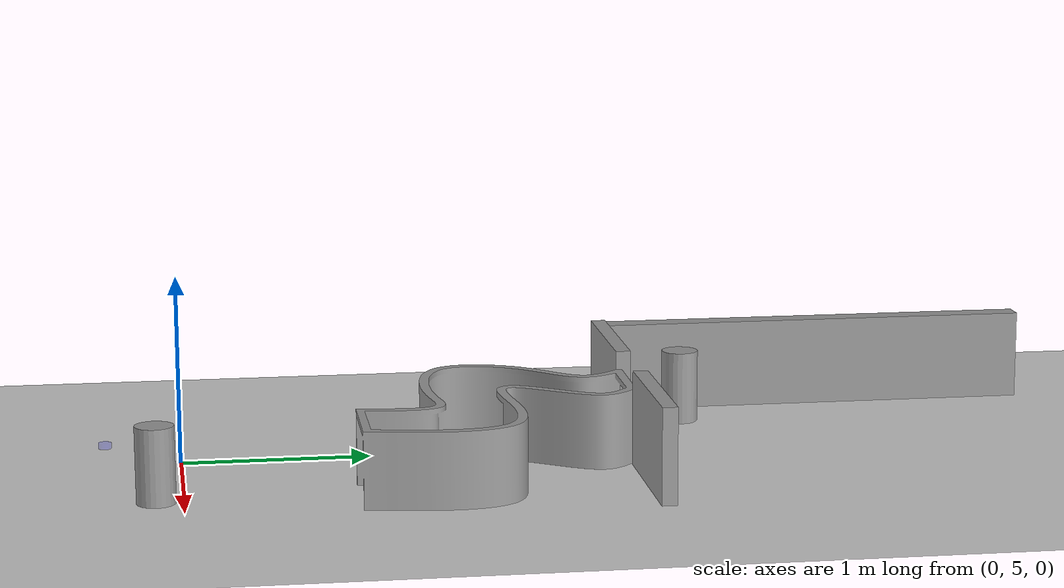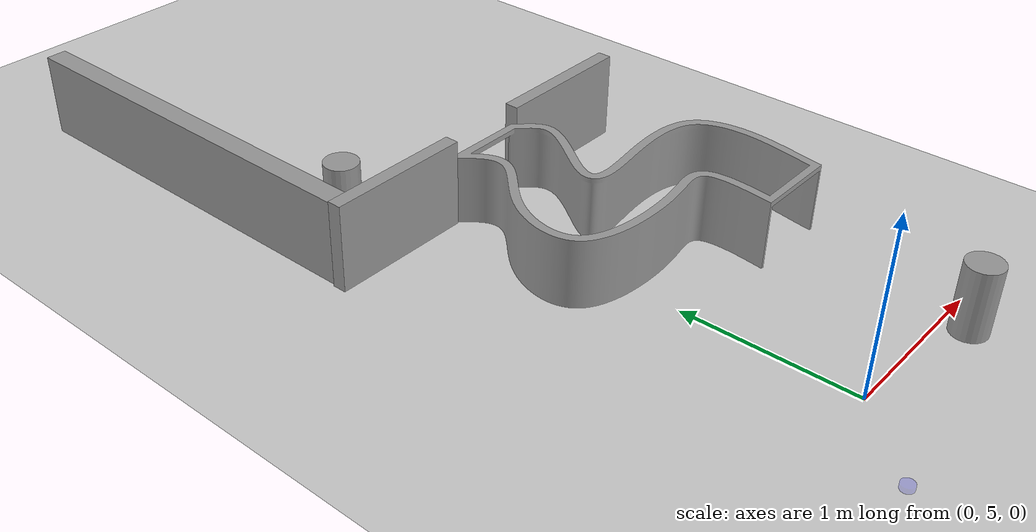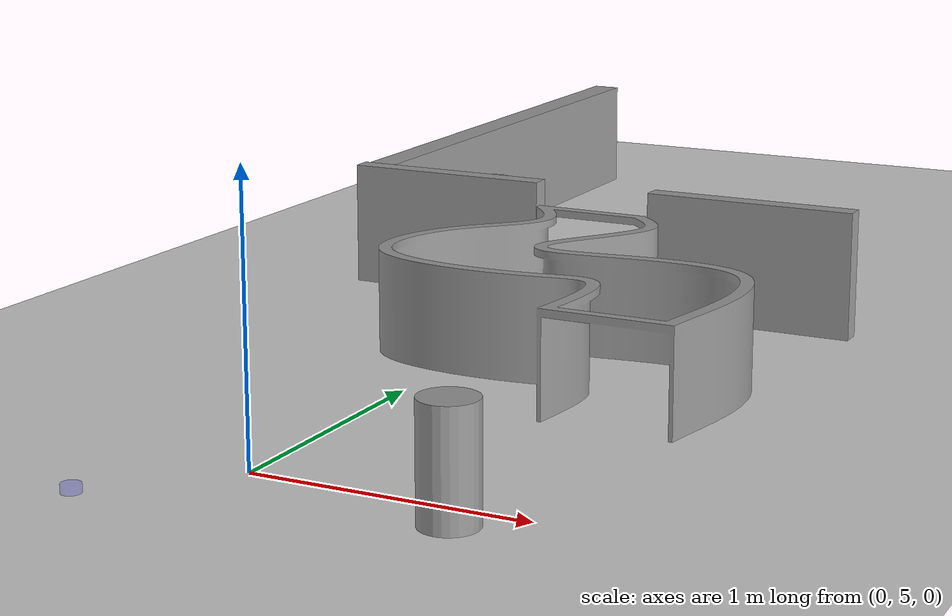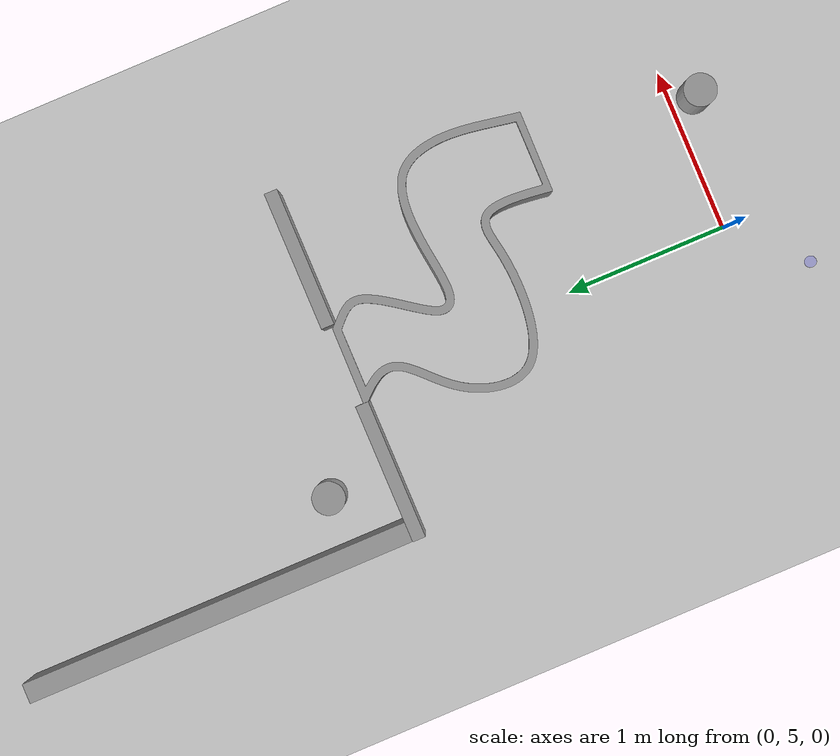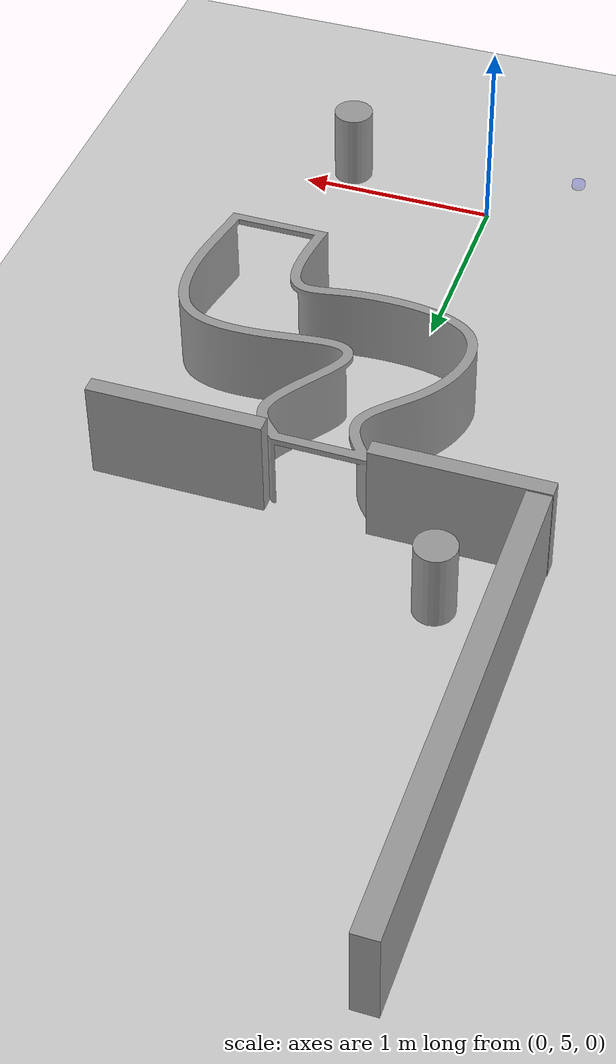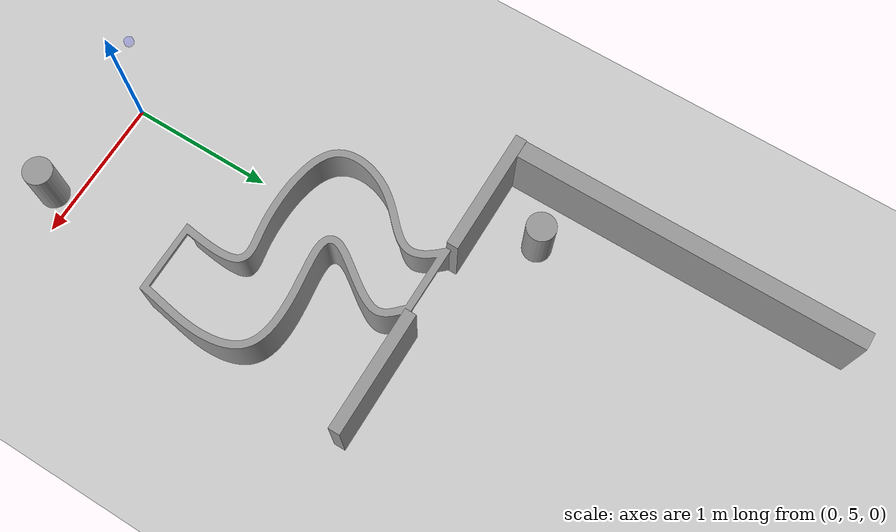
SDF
<sdf version="1.7">
 <world name="default">
  <model name="ground_plane">
   <static>1</static>
   <link name="link">
    <collision name="collision">
     <geometry><plane><normal>0 0 1</normal><size>100 100</size></plane></geometry>
     <surface><friction><ode><mu>100</mu><mu2>50</mu2></ode></friction></surface>
    </collision>
    <visual name="visual">
     <cast_shadows>0</cast_shadows>
     <geometry><plane><normal>0 0 1</normal><size>100 100</size></plane></geometry>
     <material>
      <script><uri>file://media/materials/scripts/gazebo.material</uri><name>Gazebo/Grey</name></script>
     </material>
    </visual>
   </link>
  </model>
  <model name="murs">
   <link name="link">
    <inertial>
     <mass>0.146674</mass>
     <inertia>
      <ixx>0.0781773</ixx>
      <ixy>0</ixy>
      <ixz>0</ixz>
      <iyy>0.00309761</iyy>
      <iyz>0</iyz>
      <izz>0.0754374</izz>
     </inertia>
    </inertial>
    <kinematic>1</kinematic>
    <pose>-0.225456 0.79863 -0.251939 0 -0 0</pose>
    <gravity>0</gravity>
    <visual name="visual">
     <geometry><box><size>0.120964 2.48137 0.488666</size></box></geometry>
     <material>
      <script><name>Gazebo/Grey</name><uri>file://media/materials/scripts/gazebo.material</uri></script>
      <shader type="pixel"><normal_map>__default__</normal_map></shader>
      <ambient>0.5 0.5 0.5 0</ambient>
      <diffuse>0.5 0.5 0.5 1</diffuse>
      <specular>0.01 0.01 0.01 1</specular>
      <emissive>0 0 0 1</emissive>
     </material>
    </visual>
    <collision name="collision">
     <geometry><box><size>0.120964 2.48137 0.488666</size></box></geometry>
     <surface>
      <friction>
       <ode><mu>1</mu><mu2>1</mu2><fdir1>0 0 0</fdir1><slip1>0</slip1><slip2>0</slip2></ode>
       <torsional>
        <coefficient>1</coefficient>
        <patch_radius>0</patch_radius>
        <surface_radius>0</surface_radius>
        <use_patch_radius>1</use_patch_radius>
        <ode><slip>0</slip></ode>
       </torsional>
      </friction>
      <bounce><restitution_coefficient>0</restitution_coefficient><threshold>1e+06</threshold></bounce>
      <contact>
       <collide_without_contact>0</collide_without_contact>
       <collide_without_contact_bitmask>1</collide_without_contact_bitmask>
       <collide_bitmask>1</collide_bitmask>
       <ode>
        <soft_cfm>0</soft_cfm>
        <soft_erp>0.2</soft_erp>
        <kp>1e+13</kp>
        <kd>1</kd>
        <max_vel>0.01</max_vel>
        <min_depth>0</min_depth>
       </ode>
       <bullet>
        <split_impulse>1</split_impulse>
        <split_impulse_penetration_threshold>-0.01</split_impulse_penetration_threshold>
        <soft_cfm>0</soft_cfm>
        <soft_erp>0.2</soft_erp>
        <kp>1e+13</kp>
        <kd>1</kd>
       </bullet>
      </contact>
     </surface>
    </collision>
   </link>
   <static>0</static>
   <pose>-0.688259 7.7954 0.49995 -1e-05 0 0</pose>
  </model>
  <model name="murs2">
   <link name="link_0">
    <inertial>
     <mass>0.035008</mass>
     <inertia>
      <ixx>0.00078997</ixx>
      <ixy>0</ixy>
      <ixz>0</ixz>
      <iyy>0.00287334</iyy>
      <iyz>0</iyz>
      <izz>0.00212085</izz>
     </inertia>
    </inertial>
    <gravity>0</gravity>
    <kinematic>1</kinematic>
    <visual name="visual">
     <geometry><box><size>0.848856 0.080148 0.51416</size></box></geometry>
     <material>
      <lighting>1</lighting>
      <script><uri>file://media/materials/scripts/gazebo.material</uri><name>Gazebo/Grey</name></script>
      <shader type="pixel"><normal_map>__default__</normal_map></shader>
      <ambient>0.5 0.5 0.5 0</ambient>
      <diffuse>0.5 0.5 0.5 1</diffuse>
      <specular>0.01 0.01 0.01 1</specular>
      <emissive>0 0 0 1</emissive>
     </material>
    </visual>
    <collision name="collision">
     <geometry><box><size>0.848856 0.080148 0.51416</size></box></geometry>
     <surface>
      <friction>
       <ode><mu>1</mu><mu2>1</mu2><fdir1>0 0 0</fdir1><slip1>0</slip1><slip2>0</slip2></ode>
       <torsional>
        <coefficient>1</coefficient>
        <patch_radius>0</patch_radius>
        <surface_radius>0</surface_radius>
        <use_patch_radius>1</use_patch_radius>
        <ode><slip>0</slip></ode>
       </torsional>
      </friction>
      <bounce><restitution_coefficient>0</restitution_coefficient><threshold>1e+06</threshold></bounce>
      <contact>
       <collide_without_contact>0</collide_without_contact>
       <collide_without_contact_bitmask>1</collide_without_contact_bitmask>
       <collide_bitmask>1</collide_bitmask>
       <ode>
        <soft_cfm>0</soft_cfm>
        <soft_erp>0.2</soft_erp>
        <kp>1e+13</kp>
        <kd>1</kd>
        <max_vel>0.01</max_vel>
        <min_depth>0</min_depth>
       </ode>
       <bullet>
        <split_impulse>1</split_impulse>
        <split_impulse_penetration_threshold>-0.01</split_impulse_penetration_threshold>
        <soft_cfm>0</soft_cfm>
        <soft_erp>0.2</soft_erp>
        <kp>1e+13</kp>
        <kd>1</kd>
       </bullet>
      </contact>
     </surface>
    </collision>
   </link>
   <static>0</static>
   <pose>-0.552249 7.39171 0.242838 0 -0 0</pose>
  </model>
  <model name="murs2_clone">
   <link name="link_0">
    <inertial>
     <mass>0.035008</mass>
     <inertia>
      <ixx>0.00078997</ixx>
      <ixy>0</ixy>
      <ixz>0</ixz>
      <iyy>0.00287334</iyy>
      <iyz>0</iyz>
      <izz>0.00212085</izz>
     </inertia>
    </inertial>
    <gravity>0</gravity>
    <kinematic>1</kinematic>
    <visual name="visual">
     <geometry><box><size>0.848856 0.080148 0.51416</size></box></geometry>
     <material>
      <lighting>1</lighting>
      <script><uri>file://media/materials/scripts/gazebo.material</uri><name>Gazebo/Grey</name></script>
      <shader type="pixel"><normal_map>__default__</normal_map></shader>
      <ambient>0.5 0.5 0.5 0</ambient>
      <diffuse>0.5 0.5 0.5 1</diffuse>
      <specular>0.01 0.01 0.01 1</specular>
      <emissive>0 0 0 1</emissive>
     </material>
    </visual>
    <collision name="collision">
     <geometry><box><size>0.848856 0.080148 0.51416</size></box></geometry>
     <surface>
      <friction>
       <ode><mu>1</mu><mu2>1</mu2><fdir1>0 0 0</fdir1><slip1>0</slip1><slip2>0</slip2></ode>
       <torsional>
        <coefficient>1</coefficient>
        <patch_radius>0</patch_radius>
        <surface_radius>0</surface_radius>
        <use_patch_radius>1</use_patch_radius>
        <ode><slip>0</slip></ode>
       </torsional>
      </friction>
      <bounce><restitution_coefficient>0</restitution_coefficient><threshold>1e+06</threshold></bounce>
      <contact>
       <collide_without_contact>0</collide_without_contact>
       <collide_without_contact_bitmask>1</collide_without_contact_bitmask>
       <collide_bitmask>1</collide_bitmask>
       <ode>
        <soft_cfm>0</soft_cfm>
        <soft_erp>0.2</soft_erp>
        <kp>1e+13</kp>
        <kd>1</kd>
        <max_vel>0.01</max_vel>
        <min_depth>0</min_depth>
       </ode>
       <bullet>
        <split_impulse>1</split_impulse>
        <split_impulse_penetration_threshold>-0.01</split_impulse_penetration_threshold>
        <soft_cfm>0</soft_cfm>
        <soft_erp>0.2</soft_erp>
        <kp>1e+13</kp>
        <kd>1</kd>
       </bullet>
      </contact>
     </surface>
    </collision>
   </link>
   <static>0</static>
   <pose>0.786615 7.39799 0.242838 0 -0 0</pose>
  </model>
  <model name="obstacle_clone_2">
   <link name="link">
    <inertial>
     <mass>242.531</mass>
     <inertia><ixx>3.84007</ixx><ixy>0</ixy><ixz>0</ixz><iyy>3.84007</iyy><iyz>0</iyz><izz>1.21265</izz></inertia>
    </inertial>
    <kinematic>1</kinematic>
    <pose>0 0 -0.2 0 -0 0</pose>
    <gravity>0</gravity>
    <visual name="visual">
     <geometry><cylinder><radius>0.1</radius><length>0.4</length></cylinder></geometry>
     <material>
      <script><name>Gazebo/Grey</name><uri>file://media/materials/scripts/gazebo.material</uri></script>
      <shader type="pixel"><normal_map>__default__</normal_map></shader>
      <ambient>0.3 0.3 0.3 1</ambient>
      <diffuse>0.7 0.7 0.7 1</diffuse>
      <specular>0.01 0.01 0.01 1</specular>
      <emissive>0 0 0 1</emissive>
     </material>
    </visual>
    <collision name="collision">
     <geometry><cylinder><radius>0.1</radius><length>0.4</length></cylinder></geometry>
     <surface>
      <friction>
       <ode><mu>1</mu><mu2>1</mu2><fdir1>0 0 0</fdir1><slip1>0</slip1><slip2>0</slip2></ode>
       <torsional>
        <coefficient>1</coefficient>
        <patch_radius>0</patch_radius>
        <surface_radius>0</surface_radius>
        <use_patch_radius>1</use_patch_radius>
        <ode><slip>0</slip></ode>
       </torsional>
      </friction>
      <bounce><restitution_coefficient>0</restitution_coefficient><threshold>1e+06</threshold></bounce>
      <contact>
       <collide_without_contact>0</collide_without_contact>
       <collide_without_contact_bitmask>1</collide_without_contact_bitmask>
       <collide_bitmask>1</collide_bitmask>
       <ode>
        <soft_cfm>0</soft_cfm>
        <soft_erp>0.2</soft_erp>
        <kp>1e+13</kp>
        <kd>1</kd>
        <max_vel>0.01</max_vel>
        <min_depth>0</min_depth>
       </ode>
       <bullet>
        <split_impulse>1</split_impulse>
        <split_impulse_penetration_threshold>-0.01</split_impulse_penetration_threshold>
        <soft_cfm>0</soft_cfm>
        <soft_erp>0.2</soft_erp>
        <kp>1e+13</kp>
        <kd>1</kd>
       </bullet>
      </contact>
     </surface>
    </collision>
   </link>
   <static>0</static>
   <pose>-0.557721 7.78703 0.401053 0 -0 0</pose>
  </model>
  <model name="Tunnnel">
   <link name="link_2">
    <inertial>
     <mass>1</mass>
     <inertia>
      <ixx>0.166667</ixx>
      <ixy>0</ixy>
      <ixz>0</ixz>
      <iyy>0.166667</iyy>
      <iyz>0</iyz>
      <izz>0.166667</izz>
     </inertia>
    </inertial>
    <kinematic>1</kinematic>
    <visual name="visual">
     <geometry><mesh><uri>./models/Tunnel.stl</uri><scale>1 1 1</scale></mesh></geometry>
     <material>
      <lighting>1</lighting>
      <script><uri>file://media/materials/scripts/gazebo.material</uri><name>Gazebo/Grey</name></script>
      <shader type="pixel"><normal_map>__default__</normal_map></shader>
      <ambient>0.6 0.6 0.6 1</ambient>
      <diffuse>0.6 0.6 0.6 1</diffuse>
      <specular>0 0 0 1</specular>
      <emissive>0 0 0 1</emissive>
     </material>
    </visual>
    <collision name="collision">
     <geometry><mesh><uri>./models/Tunnel.stl</uri><scale>1 1 1</scale></mesh></geometry>
     <surface>
      <friction>
       <ode><mu>1</mu><mu2>1</mu2><fdir1>0 0 0</fdir1><slip1>0</slip1><slip2>0</slip2></ode>
       <torsional>
        <coefficient>1</coefficient>
        <patch_radius>0</patch_radius>
        <surface_radius>0</surface_radius>
        <use_patch_radius>1</use_patch_radius>
        <ode><slip>0</slip></ode>
       </torsional>
      </friction>
      <bounce><restitution_coefficient>0</restitution_coefficient><threshold>1e+06</threshold></bounce>
      <contact>
       <collide_without_contact>0</collide_without_contact>
       <collide_without_contact_bitmask>1</collide_without_contact_bitmask>
       <collide_bitmask>1</collide_bitmask>
       <ode>
        <soft_cfm>0</soft_cfm>
        <soft_erp>0.2</soft_erp>
        <kp>1e+13</kp>
        <kd>1</kd>
        <max_vel>0.01</max_vel>
        <min_depth>0</min_depth>
       </ode>
       <bullet>
        <split_impulse>1</split_impulse>
        <split_impulse_penetration_threshold>-0.01</split_impulse_penetration_threshold>
        <soft_cfm>0</soft_cfm>
        <soft_erp>0.2</soft_erp>
        <kp>1e+13</kp>
        <kd>1</kd>
       </bullet>
      </contact>
     </surface>
    </collision>
   </link>
   <static>0</static>
   <pose>-0.467192 5.88495 0 0 -0 0</pose>
  </model>
  <model name="Puck_1_clone_clone_2">
   <link name="link">
    <inertial>
     <mass>10</mass>
     <inertia>
      <ixx>0.0038125</ixx>
      <ixy>0</ixy>
      <ixz>0</ixz>
      <iyy>0.0038125</iyy>
      <iyz>0</iyz>
      <izz>0.006125</izz>
     </inertia>
    </inertial>
    <visual name="visual">
     <geometry><cylinder><radius>0.035</radius><length>0.03</length></cylinder></geometry>
     <material>
      <script><name>Gazebo/Grey</name><uri>file://media/materials/scripts/gazebo.material</uri></script>
      <shader type="pixel"><normal_map>__default__</normal_map></shader>
      <ambient>0 0 1 1</ambient>
      <diffuse>0 0 0 1</diffuse>
      <specular>0.01 0.01 0 1</specular>
      <emissive>0 0 0 1</emissive>
     </material>
     <transparency>0.9</transparency>
    </visual>
    <collision name="collision">
     <geometry><cylinder><radius>0.035</radius><length>0.03</length></cylinder></geometry>
     <surface>
      <friction>
       <ode><mu>1</mu><mu2>1</mu2><fdir1>0 0 0</fdir1><slip1>0</slip1><slip2>0</slip2></ode>
       <torsional>
        <coefficient>1</coefficient>
        <patch_radius>0</patch_radius>
        <surface_radius>0</surface_radius>
        <use_patch_radius>1</use_patch_radius>
        <ode><slip>0</slip></ode>
       </torsional>
      </friction>
      <bounce><restitution_coefficient>0</restitution_coefficient><threshold>1e+06</threshold></bounce>
      <contact>
       <collide_without_contact>0</collide_without_contact>
       <collide_without_contact_bitmask>1</collide_without_contact_bitmask>
       <collide_bitmask>1</collide_bitmask>
       <ode>
        <soft_cfm>0</soft_cfm>
        <soft_erp>0.2</soft_erp>
        <kp>1e+13</kp>
        <kd>1</kd>
        <max_vel>0.01</max_vel>
        <min_depth>0</min_depth>
       </ode>
       <bullet>
        <split_impulse>1</split_impulse>
        <split_impulse_penetration_threshold>-0.01</split_impulse_penetration_threshold>
        <soft_cfm>0</soft_cfm>
        <soft_erp>0.2</soft_erp>
        <kp>1e+13</kp>
        <kd>1</kd>
       </bullet>
      </contact>
     </surface>
    </collision>
   </link>
   <static>0</static>
   <pose>-0.392118 4.59984 0.014995 -0.000141 -0.000141 4.3e-05</pose>
  </model>
  <model name="obstacle_clone_0_clone">
   <link name="link">
    <inertial>
     <mass>242.531</mass>
     <inertia><ixx>3.84007</ixx><ixy>0</ixy><ixz>0</ixz><iyy>3.84007</iyy><iyz>0</iyz><izz>1.21265</izz></inertia>
    </inertial>
    <kinematic>1</kinematic>
    <pose>0 0 -0.2 0 -0 0</pose>
    <gravity>0</gravity>
    <visual name="visual">
     <geometry><cylinder><radius>0.1</radius><length>0.4</length></cylinder></geometry>
     <material>
      <script><name>Gazebo/Grey</name><uri>file://media/materials/scripts/gazebo.material</uri></script>
      <shader type="pixel"><normal_map>__default__</normal_map></shader>
      <ambient>0.3 0.3 0.3 1</ambient>
      <diffuse>0.7 0.7 0.7 1</diffuse>
      <specular>0.01 0.01 0.01 1</specular>
      <emissive>0 0 0 1</emissive>
     </material>
    </visual>
    <collision name="collision">
     <geometry><cylinder><radius>0.1</radius><length>0.4</length></cylinder></geometry>
     <surface>
      <friction>
       <ode><mu>1</mu><mu2>1</mu2><fdir1>0 0 0</fdir1><slip1>0</slip1><slip2>0</slip2></ode>
       <torsional>
        <coefficient>1</coefficient>
        <patch_radius>0</patch_radius>
        <surface_radius>0</surface_radius>
        <use_patch_radius>1</use_patch_radius>
        <ode><slip>0</slip></ode>
       </torsional>
      </friction>
      <bounce><restitution_coefficient>0</restitution_coefficient><threshold>1e+06</threshold></bounce>
      <contact>
       <collide_without_contact>0</collide_without_contact>
       <collide_without_contact_bitmask>1</collide_without_contact_bitmask>
       <collide_bitmask>1</collide_bitmask>
       <ode>
        <soft_cfm>0</soft_cfm>
        <soft_erp>0.2</soft_erp>
        <kp>1e+13</kp>
        <kd>1</kd>
        <max_vel>0.01</max_vel>
        <min_depth>0</min_depth>
       </ode>
       <bullet>
        <split_impulse>1</split_impulse>
        <split_impulse_penetration_threshold>-0.01</split_impulse_penetration_threshold>
        <soft_cfm>0</soft_cfm>
        <soft_erp>0.2</soft_erp>
        <kp>1e+13</kp>
        <kd>1</kd>
       </bullet>
      </contact>
     </surface>
    </collision>
   </link>
   <static>0</static>
   <pose>0.788512 4.86323 0.4003 0 -0 0</pose>
  </model>
 </world>
</sdf>
